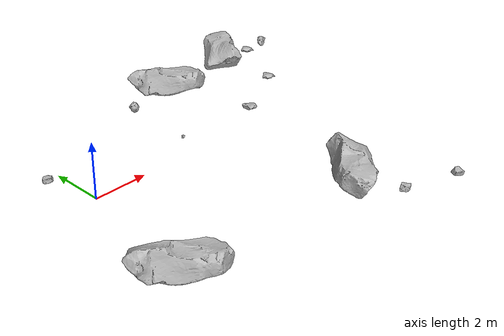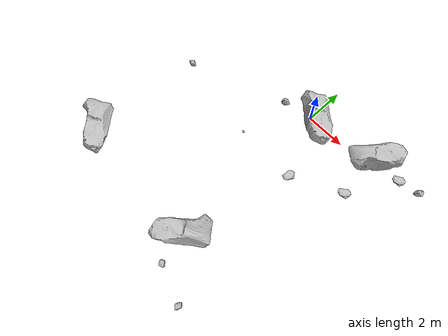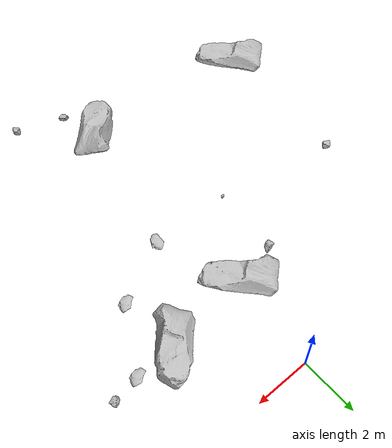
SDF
<sdf version="1.7">
 <world name="marsyard">
  <model name="Rock_4">
   <static>true</static>
   <pose>-0.1056 -2.1809 4.0000 0.0000 0.0000 -3.0345</pose>
   <link name="link">
    <visual name="visual">
     <geometry><mesh><uri>package://rock_generator/rocks_ws/rock_3/meshes/rock_3.stl</uri></mesh></geometry>
    </visual>
    <collision name="collision">
     <geometry><mesh><uri>package://rock_generator/rocks_ws/rock_3/meshes/rock_3.stl</uri></mesh></geometry>
    </collision>
   </link>
  </model>
  <model name="Rock_14">
   <static>true</static>
   <pose>-4.0658 -3.7782 4.0000 0.0000 0.0000 1.6895</pose>
   <link name="link">
    <visual name="visual">
     <geometry><mesh><uri>package://rock_generator/rocks_ws/rock_1/meshes/rock_1.stl</uri></mesh></geometry>
    </visual>
    <collision name="collision">
     <geometry><mesh><uri>package://rock_generator/rocks_ws/rock_1/meshes/rock_1.stl</uri></mesh></geometry>
    </collision>
   </link>
  </model>
  <model name="Rock_16">
   <static>true</static>
   <pose>5.1729 -1.6340 4.0000 0.0000 0.0000 0.2189</pose>
   <link name="link">
    <visual name="visual">
     <geometry><mesh><uri>package://rock_generator/rocks_ws/rock_8/meshes/rock_8.stl</uri></mesh></geometry>
    </visual>
    <collision name="collision">
     <geometry><mesh><uri>package://rock_generator/rocks_ws/rock_8/meshes/rock_8.stl</uri></mesh></geometry>
    </collision>
   </link>
  </model>
  <model name="Rock_25">
   <static>true</static>
   <pose>1.1102 -8.7789 4.0000 0.0000 0.0000 0.9108</pose>
   <link name="link">
    <visual name="visual">
     <geometry><mesh><uri>package://rock_generator/rocks_ws/rock_4/meshes/rock_4.stl</uri></mesh></geometry>
    </visual>
    <collision name="collision">
     <geometry><mesh><uri>package://rock_generator/rocks_ws/rock_4/meshes/rock_4.stl</uri></mesh></geometry>
    </collision>
   </link>
  </model>
  <model name="Rock_31">
   <static>true</static>
   <pose>-0.2939 -4.4142 4.0000 0.0000 0.0000 2.8846</pose>
   <link name="link">
    <visual name="visual">
     <geometry><mesh><uri>package://rock_generator/rocks_ws/rock_9/meshes/rock_9.stl</uri></mesh></geometry>
    </visual>
    <collision name="collision">
     <geometry><mesh><uri>package://rock_generator/rocks_ws/rock_9/meshes/rock_9.stl</uri></mesh></geometry>
    </collision>
   </link>
  </model>
  <model name="Rock_32">
   <static>true</static>
   <pose>4.1030 -3.4735 4.0000 0.0000 0.0000 0.3679</pose>
   <link name="link">
    <visual name="visual">
     <geometry><mesh><uri>package://rock_generator/rocks_ws/rock_8/meshes/rock_8.stl</uri></mesh></geometry>
    </visual>
    <collision name="collision">
     <geometry><mesh><uri>package://rock_generator/rocks_ws/rock_8/meshes/rock_8.stl</uri></mesh></geometry>
    </collision>
   </link>
  </model>
  <model name="Rock_36">
   <static>true</static>
   <pose>2.2249 -4.4462 4.0000 0.0000 0.0000 1.1762</pose>
   <link name="link">
    <visual name="visual">
     <geometry><mesh><uri>package://rock_generator/rocks_ws/rock_8/meshes/rock_8.stl</uri></mesh></geometry>
    </visual>
    <collision name="collision">
     <geometry><mesh><uri>package://rock_generator/rocks_ws/rock_8/meshes/rock_8.stl</uri></mesh></geometry>
    </collision>
   </link>
  </model>
  <model name="Rock_39">
   <static>true</static>
   <pose>6.0149 -1.5648 4.0000 0.0000 0.0000 0.2692</pose>
   <link name="link">
    <visual name="visual">
     <geometry><mesh><uri>package://rock_generator/rocks_ws/rock_3/meshes/rock_3.stl</uri></mesh></geometry>
    </visual>
    <collision name="collision">
     <geometry><mesh><uri>package://rock_generator/rocks_ws/rock_3/meshes/rock_3.stl</uri></mesh></geometry>
    </collision>
   </link>
  </model>
  <model name="Rock_42">
   <static>true</static>
   <pose>1.3523 -2.0040 4.0000 0.0000 0.0000 2.5949</pose>
   <link name="link">
    <visual name="visual">
     <geometry><mesh><uri>package://rock_generator/rocks_ws/rock_4/meshes/rock_4.stl</uri></mesh></geometry>
    </visual>
    <collision name="collision">
     <geometry><mesh><uri>package://rock_generator/rocks_ws/rock_4/meshes/rock_4.stl</uri></mesh></geometry>
    </collision>
   </link>
  </model>
  <model name="Rock_54">
   <static>true</static>
   <pose>2.9744 -10.4993 4.0000 0.0000 0.0000 -2.9847</pose>
   <link name="link">
    <visual name="visual">
     <geometry><mesh><uri>package://rock_generator/rocks_ws/rock_1/meshes/rock_1.stl</uri></mesh></geometry>
    </visual>
    <collision name="collision">
     <geometry><mesh><uri>package://rock_generator/rocks_ws/rock_1/meshes/rock_1.stl</uri></mesh></geometry>
    </collision>
   </link>
  </model>
  <model name="Rock_58">
   <static>true</static>
   <pose>1.5147 -9.9768 4.0000 0.0000 0.0000 -1.9110</pose>
   <link name="link">
    <visual name="visual">
     <geometry><mesh><uri>package://rock_generator/rocks_ws/rock_1/meshes/rock_1.stl</uri></mesh></geometry>
    </visual>
    <collision name="collision">
     <geometry><mesh><uri>package://rock_generator/rocks_ws/rock_1/meshes/rock_1.stl</uri></mesh></geometry>
    </collision>
   </link>
  </model>
  <model name="Rock_61">
   <static>true</static>
   <pose>-4.2485 -8.4795 4.0000 0.0000 0.0000 2.5454</pose>
   <link name="link">
    <visual name="visual">
     <geometry><mesh><uri>package://rock_generator/rocks_ws/rock_4/meshes/rock_4.stl</uri></mesh></geometry>
    </visual>
    <collision name="collision">
     <geometry><mesh><uri>package://rock_generator/rocks_ws/rock_4/meshes/rock_4.stl</uri></mesh></geometry>
    </collision>
   </link>
  </model>
  <model name="Rock_65">
   <static>true</static>
   <pose>4.0199 -1.5594 4.0000 0.0000 0.0000 -2.1563</pose>
   <link name="link">
    <visual name="visual">
     <geometry><mesh><uri>package://rock_generator/rocks_ws/rock_4/meshes/rock_4.stl</uri></mesh></geometry>
    </visual>
    <collision name="collision">
     <geometry><mesh><uri>package://rock_generator/rocks_ws/rock_4/meshes/rock_4.stl</uri></mesh></geometry>
    </collision>
   </link>
  </model>
 </world>
</sdf>
